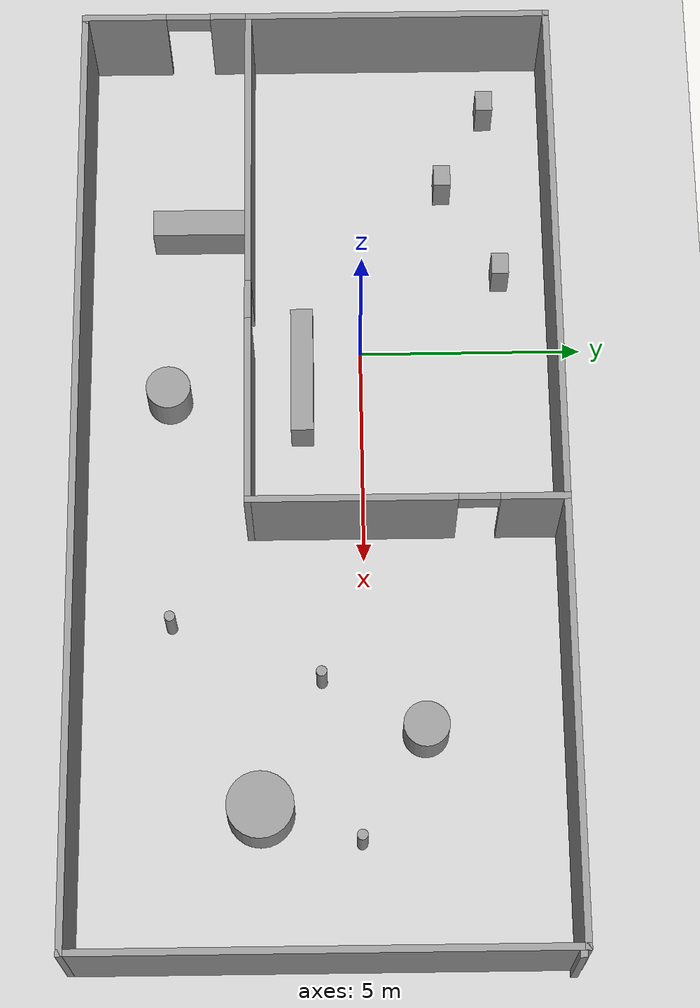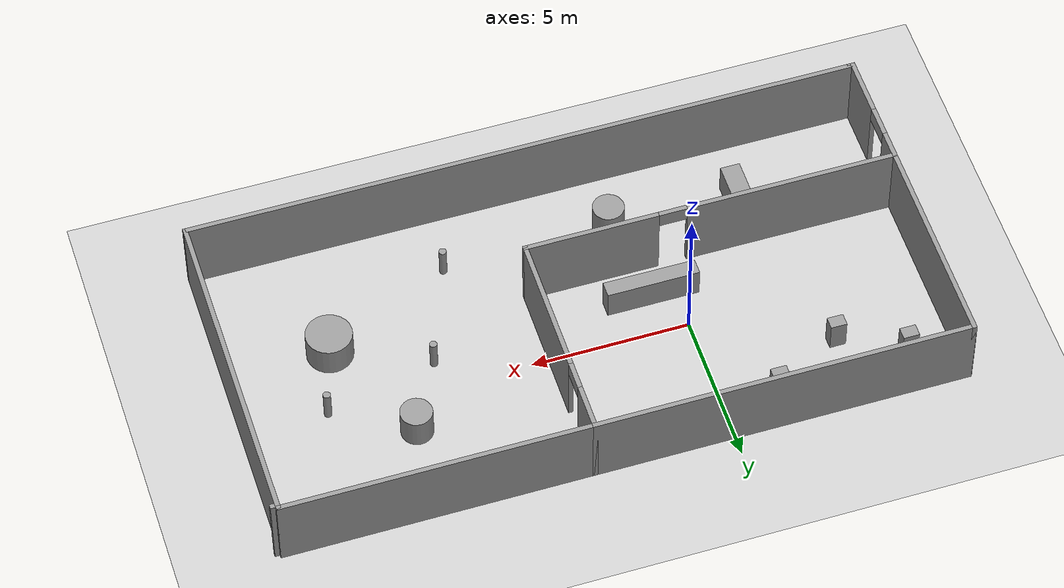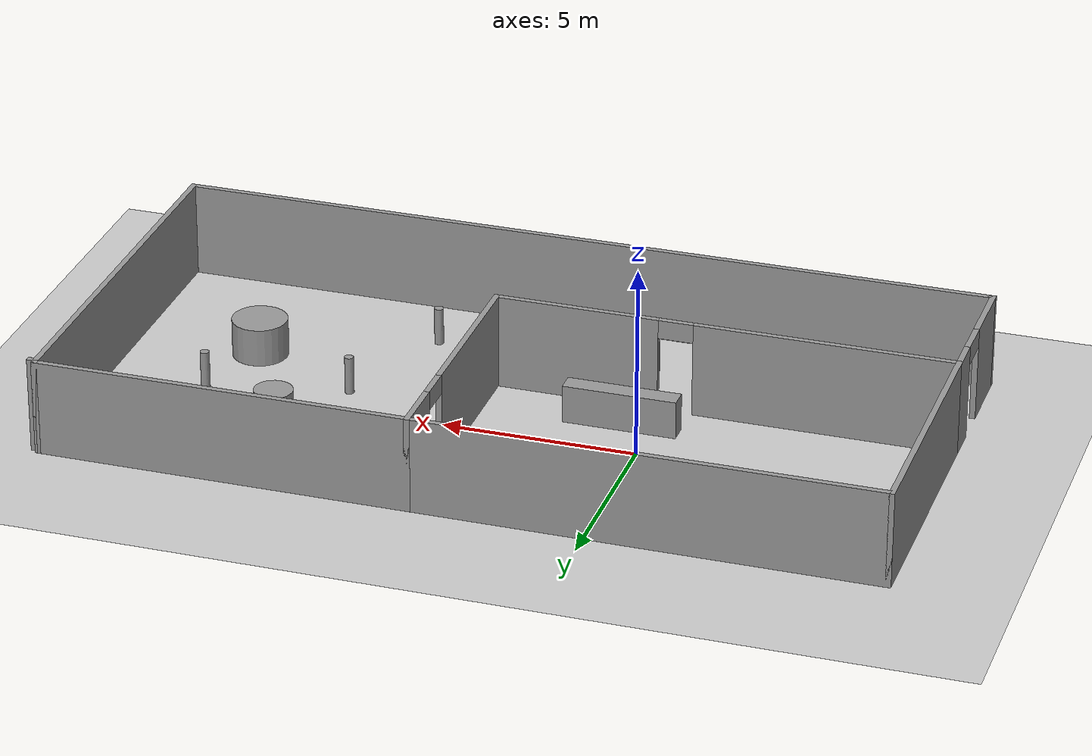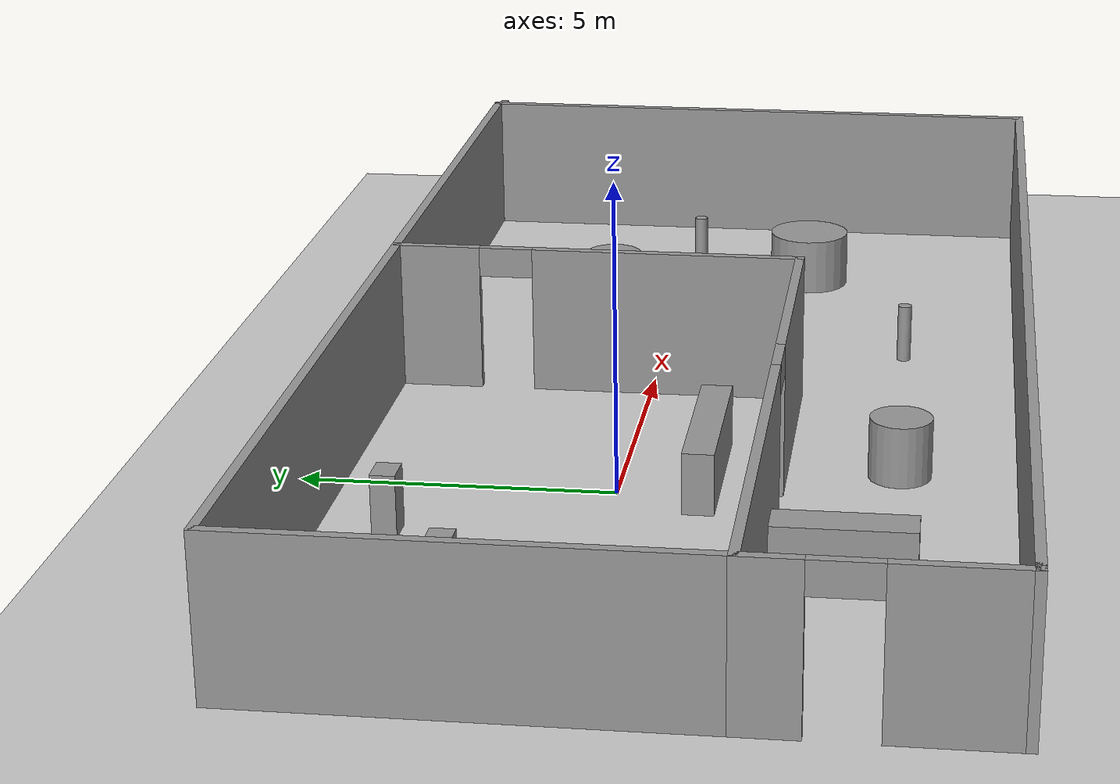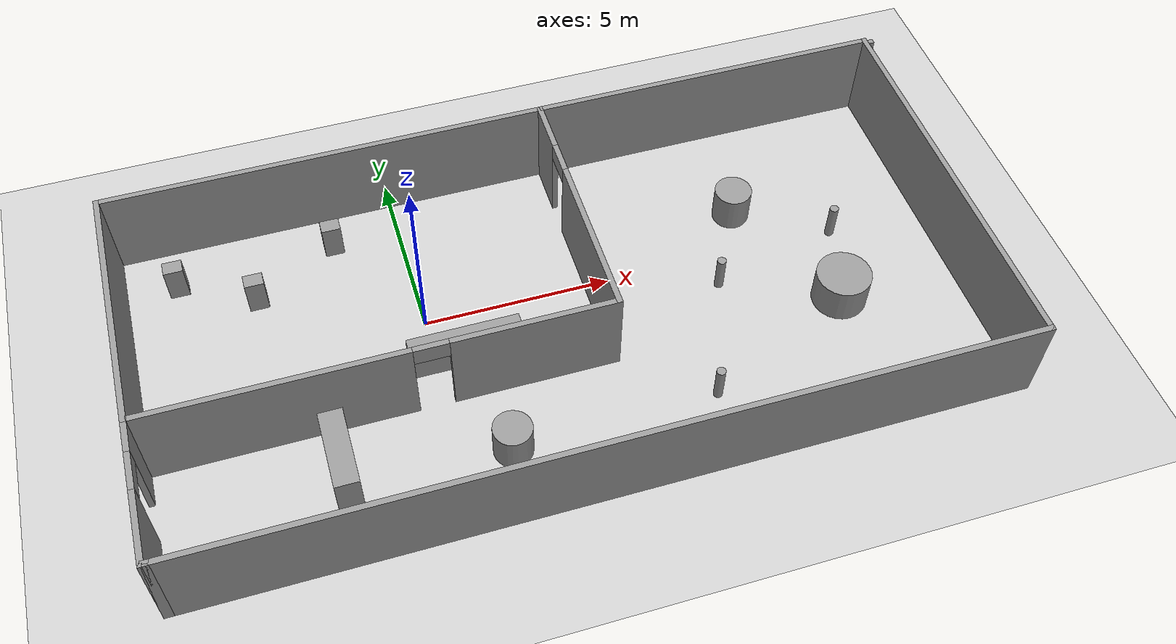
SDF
<sdf version="1.6">
 <world name="default">
  <light name="sun" type="directional">
   <pose>0 0 10 0 -0 0</pose>
   <diffuse>0.8 0.8 0.8 1</diffuse>
   <specular>0.2 0.2 0.2 1</specular>
   <attenuation>
    <range>1000</range>
    <constant>0.9</constant>
    <linear>0.01</linear>
    <quadratic>0.001</quadratic>
   </attenuation>
   <direction>-0.5 0.1 -0.9</direction>
  </light>
  <model name="ground_plane">
   <static>1</static>
   <link name="link">
    <collision name="collision">
     <geometry><plane><normal>0 0 1</normal><size>100 100</size></plane></geometry>
     <surface>
      <contact><collide_bitmask>65535</collide_bitmask></contact>
      <friction><ode><mu>100</mu><mu2>50</mu2></ode></friction>
     </surface>
    </collision>
    <visual name="visual">
     <cast_shadows>0</cast_shadows>
     <geometry><plane><normal>0 0 1</normal><size>100 100</size></plane></geometry>
     <material>
      <script><uri>file://media/materials/scripts/gazebo.material</uri><name>Gazebo/Grey</name></script>
     </material>
    </visual>
   </link>
  </model>
  <gravity>0 0 -9.8</gravity>
  <magnetic_field>6e-06 2.3e-05 -4.2e-05</magnetic_field>
  <atmosphere type="adiabatic"/>
  <physics name="default_physics" default="0" type="ode">
   <max_step_size>0.001</max_step_size>
   <real_time_factor>1</real_time_factor>
   <real_time_update_rate>1000</real_time_update_rate>
  </physics>
  <scene><ambient>0.4 0.4 0.4 1</ambient><background>0.7 0.7 0.7 1</background><shadows>1</shadows></scene>
  <spherical_coordinates>
   <surface_model>EARTH_WGS84</surface_model>
   <latitude_deg>0</latitude_deg>
   <longitude_deg>0</longitude_deg>
   <elevation>0</elevation>
   <heading_deg>0</heading_deg>
  </spherical_coordinates>
  <model name="homeServiceBuilding">
   <pose>3.35994 -0.947617 0 0 -0 0</pose>
   <link name="Wall_0">
    <collision name="Wall_0_Collision">
     <geometry><box><size>7 0.15 2.5</size></box></geometry>
     <pose>0 0 1.25 0 -0 0</pose>
    </collision>
    <visual name="Wall_0_Visual">
     <pose>0 0 1.25 0 -0 0</pose>
     <geometry><box><size>7 0.15 2.5</size></box></geometry>
     <material>
      <script><uri>file://media/materials/scripts/gazebo.material</uri><name>Gazebo/Grey</name></script>
      <ambient>1 1 1 1</ambient>
     </material>
     <meta><layer>0</layer></meta>
    </visual>
    <pose>-10.8 1.875 0 0 -0 1.5708</pose>
   </link>
   <link name="Wall_1">
    <collision name="Wall_1_Collision">
     <geometry><box><size>12 0.15 2.5</size></box></geometry>
     <pose>0 0 1.25 0 -0 0</pose>
    </collision>
    <visual name="Wall_1_Visual">
     <pose>0 0 1.25 0 -0 0</pose>
     <geometry><box><size>12 0.15 2.5</size></box></geometry>
     <material>
      <script><uri>file://media/materials/scripts/gazebo.material</uri><name>Gazebo/Grey</name></script>
      <ambient>1 1 1 1</ambient>
     </material>
     <meta><layer>0</layer></meta>
    </visual>
    <pose>-4.875 5.3 0 0 -0 0</pose>
   </link>
   <link name="Wall_10">
    <collision name="Wall_10_Collision">
     <geometry><box><size>9.75 0.15 2.5</size></box></geometry>
     <pose>0 0 1.25 0 -0 0</pose>
    </collision>
    <visual name="Wall_10_Visual">
     <pose>0 0 1.25 0 -0 0</pose>
     <geometry><box><size>9.75 0.15 2.5</size></box></geometry>
     <material>
      <script><uri>file://media/materials/scripts/gazebo.material</uri><name>Gazebo/Grey</name></script>
      <ambient>1 1 1 1</ambient>
     </material>
     <meta><layer>0</layer></meta>
    </visual>
    <pose>5.85 5.3 0 0 -0 0</pose>
   </link>
   <link name="Wall_11">
    <collision name="Wall_11_Collision">
     <geometry><box><size>0.15 0.15 2.5</size></box></geometry>
     <pose>0 0 1.25 0 -0 0</pose>
    </collision>
    <visual name="Wall_11_Visual">
     <pose>0 0 1.25 0 -0 0</pose>
     <geometry><box><size>0.15 0.15 2.5</size></box></geometry>
     <material>
      <script><uri>file://media/materials/scripts/gazebo.material</uri><name>Gazebo/Grey</name></script>
      <ambient>1 1 1 1</ambient>
     </material>
     <meta><layer>0</layer></meta>
    </visual>
    <pose>10.65 5.3 0 0 -0 0</pose>
   </link>
   <link name="Wall_14">
    <collision name="Wall_14_Collision">
     <geometry><box><size>10.75 0.15 2.5</size></box></geometry>
     <pose>0 0 1.25 0 -0 0</pose>
    </collision>
    <visual name="Wall_14_Visual">
     <pose>0 0 1.25 0 -0 0</pose>
     <geometry><box><size>10.75 0.15 2.5</size></box></geometry>
     <material>
      <script><uri>file://media/materials/scripts/gazebo.material</uri><name>Gazebo/Grey</name></script>
      <ambient>1 1 1 1</ambient>
     </material>
     <meta><layer>0</layer></meta>
    </visual>
    <pose>10.65 0 0 0 0 -1.5708</pose>
   </link>
   <link name="Wall_15">
    <collision name="Wall_15_Collision">
     <geometry><box><size>21.5 0.15 2.5</size></box></geometry>
     <pose>0 0 1.25 0 -0 0</pose>
    </collision>
    <visual name="Wall_15_Visual">
     <pose>0 0 1.25 0 -0 0</pose>
     <geometry><box><size>21.5 0.15 2.5</size></box></geometry>
     <material>
      <script><uri>file://media/materials/scripts/gazebo.material</uri><name>Gazebo/Grey</name></script>
      <ambient>1 1 1 1</ambient>
     </material>
     <meta><layer>0</layer></meta>
    </visual>
    <pose>-0.025 -5.3 0 0 -0 3.14159</pose>
   </link>
   <link name="Wall_16">
    <collision name="Wall_16_Collision">
     <geometry><box><size>0.15 0.15 2.5</size></box></geometry>
     <pose>0 0 1.25 0 -0 0</pose>
    </collision>
    <visual name="Wall_16_Visual">
     <pose>0 0 1.25 0 -0 0</pose>
     <geometry><box><size>0.15 0.15 2.5</size></box></geometry>
     <material>
      <script><uri>file://media/materials/scripts/gazebo.material</uri><name>Gazebo/Grey</name></script>
      <ambient>1 1 1 1</ambient>
     </material>
     <meta><layer>0</layer></meta>
    </visual>
    <pose>-10.7 -5.3 0 0 -0 0</pose>
   </link>
   <link name="Wall_17">
    <collision name="Wall_17_Collision">
     <geometry><box><size>0.25 0.15 2.5</size></box></geometry>
     <pose>0 0 1.25 0 -0 0</pose>
    </collision>
    <visual name="Wall_17_Visual">
     <pose>0 0 1.25 0 -0 0</pose>
     <geometry><box><size>0.25 0.15 2.5</size></box></geometry>
     <material>
      <script><uri>file://media/materials/scripts/gazebo.material</uri><name>Gazebo/Grey</name></script>
      <ambient>1 1 1 1</ambient>
     </material>
     <meta><layer>0</layer></meta>
    </visual>
    <pose>-10.75 -5.3 0 0 -0 3.14159</pose>
   </link>
   <link name="Wall_18">
    <pose>-10.8 -3.425 0 0 -0 1.5708</pose>
    <visual name="Wall_18_Visual_0">
     <pose>-0.980045 0 1.25 0 -0 0</pose>
     <geometry><box><size>1.93991 0.15 2.5</size></box></geometry>
     <material>
      <script><uri>file://media/materials/scripts/gazebo.material</uri><name>Gazebo/Grey</name></script>
      <ambient>1 1 1 1</ambient>
     </material>
     <meta><layer>0</layer></meta>
    </visual>
    <collision name="Wall_18_Collision_0">
     <geometry><box><size>1.93991 0.15 2.5</size></box></geometry>
     <pose>-0.980045 0 1.25 0 -0 0</pose>
    </collision>
    <visual name="Wall_18_Visual_1">
     <pose>1.47186 0 1.25 0 -0 0</pose>
     <geometry><box><size>0.956273 0.15 2.5</size></box></geometry>
     <material>
      <script><uri>file://media/materials/scripts/gazebo.material</uri><name>Gazebo/Grey</name></script>
      <ambient>1 1 1 1</ambient>
     </material>
     <meta><layer>0</layer></meta>
    </visual>
    <collision name="Wall_18_Collision_1">
     <geometry><box><size>0.956273 0.15 2.5</size></box></geometry>
     <pose>1.47186 0 1.25 0 -0 0</pose>
    </collision>
    <visual name="Wall_18_Visual_2">
     <pose>0.491819 0 2.25 0 -0 0</pose>
     <geometry><box><size>1.00382 0.15 0.5</size></box></geometry>
     <material>
      <script><uri>file://media/materials/scripts/gazebo.material</uri><name>Gazebo/Grey</name></script>
      <ambient>1 1 1 1</ambient>
     </material>
     <meta><layer>0</layer></meta>
    </visual>
    <collision name="Wall_18_Collision_2">
     <geometry><box><size>1.00382 0.15 0.5</size></box></geometry>
     <pose>0.491819 0 2.25 0 -0 0</pose>
    </collision>
   </link>
   <link name="Wall_2">
    <pose>1.05 1.875 0 0 0 -1.5708</pose>
    <visual name="Wall_2_Visual_0">
     <pose>-2.74745 0 1.25 0 -0 0</pose>
     <geometry><box><size>1.5051 0.15 2.5</size></box></geometry>
     <material>
      <script><uri>file://media/materials/scripts/gazebo.material</uri><name>Gazebo/Grey</name></script>
      <ambient>1 1 1 1</ambient>
     </material>
     <meta><layer>0</layer></meta>
    </visual>
    <collision name="Wall_2_Collision_0">
     <geometry><box><size>1.5051 0.15 2.5</size></box></geometry>
     <pose>-2.74745 0 1.25 0 -0 0</pose>
    </collision>
    <visual name="Wall_2_Visual_1">
     <pose>1.20255 0 1.25 0 -0 0</pose>
     <geometry><box><size>4.5949 0.15 2.5</size></box></geometry>
     <material>
      <script><uri>file://media/materials/scripts/gazebo.material</uri><name>Gazebo/Grey</name></script>
      <ambient>1 1 1 1</ambient>
     </material>
     <meta><layer>0</layer></meta>
    </visual>
    <collision name="Wall_2_Collision_1">
     <geometry><box><size>4.5949 0.15 2.5</size></box></geometry>
     <pose>1.20255 0 1.25 0 -0 0</pose>
    </collision>
    <visual name="Wall_2_Visual_2">
     <pose>-1.5449 0 2.25 0 -0 0</pose>
     <geometry><box><size>0.9 0.15 0.5</size></box></geometry>
     <material>
      <script><uri>file://media/materials/scripts/gazebo.material</uri><name>Gazebo/Grey</name></script>
      <ambient>1 1 1 1</ambient>
     </material>
     <meta><layer>0</layer></meta>
    </visual>
    <collision name="Wall_2_Collision_2">
     <geometry><box><size>0.9 0.15 0.5</size></box></geometry>
     <pose>-1.5449 0 2.25 0 -0 0</pose>
    </collision>
   </link>
   <link name="Wall_3">
    <pose>-4.875 -1.55 0 0 -0 3.14159</pose>
    <visual name="Wall_3_Visual_0">
     <pose>-3.84356 0 1.25 0 -0 0</pose>
     <geometry><box><size>4.31288 0.15 2.5</size></box></geometry>
     <material>
      <script><uri>file://media/materials/scripts/gazebo.material</uri><name>Gazebo/Grey</name></script>
      <ambient>1 1 1 1</ambient>
     </material>
     <meta><layer>0</layer></meta>
    </visual>
    <collision name="Wall_3_Collision_0">
     <geometry><box><size>4.31288 0.15 2.5</size></box></geometry>
     <pose>-3.84356 0 1.25 0 -0 0</pose>
    </collision>
    <visual name="Wall_3_Visual_1">
     <pose>2.60644 0 1.25 0 -0 0</pose>
     <geometry><box><size>6.78712 0.15 2.5</size></box></geometry>
     <material>
      <script><uri>file://media/materials/scripts/gazebo.material</uri><name>Gazebo/Grey</name></script>
      <ambient>1 1 1 1</ambient>
     </material>
     <meta><layer>0</layer></meta>
    </visual>
    <collision name="Wall_3_Collision_1">
     <geometry><box><size>6.78712 0.15 2.5</size></box></geometry>
     <pose>2.60644 0 1.25 0 -0 0</pose>
    </collision>
    <visual name="Wall_3_Visual_2">
     <pose>-1.23712 0 2.25 0 -0 0</pose>
     <geometry><box><size>0.9 0.15 0.5</size></box></geometry>
     <material>
      <script><uri>file://media/materials/scripts/gazebo.material</uri><name>Gazebo/Grey</name></script>
      <ambient>1 1 1 1</ambient>
     </material>
     <meta><layer>0</layer></meta>
    </visual>
    <collision name="Wall_3_Collision_2">
     <geometry><box><size>0.9 0.15 0.5</size></box></geometry>
     <pose>-1.23712 0 2.25 0 -0 0</pose>
    </collision>
   </link>
   <link name="Wall_8">
    <collision name="Wall_8_Collision">
     <geometry><box><size>0.15 0.15 2.5</size></box></geometry>
     <pose>0 0 1.25 0 -0 0</pose>
    </collision>
    <visual name="Wall_8_Visual">
     <pose>0 0 1.25 0 -0 0</pose>
     <geometry><box><size>0.15 0.15 2.5</size></box></geometry>
     <material>
      <script><uri>file://media/materials/scripts/gazebo.material</uri><name>Gazebo/Grey</name></script>
      <ambient>1 1 1 1</ambient>
     </material>
     <meta><layer>0</layer></meta>
    </visual>
    <pose>10.8 5.2 0 0 -0 0</pose>
   </link>
   <static>1</static>
  </model>
  <model name="unit_box">
   <pose>-6.00664 2.9604 0.499998 -4e-06 4e-06 -4.5e-05</pose>
   <link name="link">
    <inertial>
     <mass>1</mass>
     <inertia>
      <ixx>0.166667</ixx>
      <ixy>0</ixy>
      <ixz>0</ixz>
      <iyy>0.166667</iyy>
      <iyz>0</iyz>
      <izz>0.166667</izz>
     </inertia>
    </inertial>
    <collision name="collision"><geometry><box><size>0.508601 0.385684 1</size></box></geometry></collision>
    <visual name="visual">
     <geometry><box><size>0.508601 0.385684 1</size></box></geometry>
     <material>
      <script><name>Gazebo/Grey</name><uri>file://media/materials/scripts/gazebo.material</uri></script>
     </material>
    </visual>
   </link>
  </model>
  <model name="unit_box_clone">
   <pose>-4.05446 1.92938 0.5 0 -0 1.6e-05</pose>
   <link name="link">
    <inertial>
     <mass>1</mass>
     <inertia>
      <ixx>0.166667</ixx>
      <ixy>0</ixy>
      <ixz>0</ixz>
      <iyy>0.166667</iyy>
      <iyz>0</iyz>
      <izz>0.166667</izz>
     </inertia>
    </inertial>
    <collision name="collision"><geometry><box><size>0.508601 0.385684 1</size></box></geometry></collision>
    <visual name="visual">
     <geometry><box><size>0.508601 0.385684 1</size></box></geometry>
     <material>
      <script><name>Gazebo/Grey</name><uri>file://media/materials/scripts/gazebo.material</uri></script>
     </material>
    </visual>
   </link>
  </model>
  <model name="unit_box_clone_0">
   <pose>-1.79676 3.2021 0.499998 -4e-06 4e-06 -0.000103</pose>
   <link name="link">
    <inertial>
     <mass>1</mass>
     <inertia>
      <ixx>0.166667</ixx>
      <ixy>0</ixy>
      <ixz>0</ixz>
      <iyy>0.166667</iyy>
      <iyz>0</iyz>
      <izz>0.166667</izz>
     </inertia>
    </inertial>
    <collision name="collision"><geometry><box><size>0.508601 0.385684 1</size></box></geometry></collision>
    <visual name="visual">
     <geometry><box><size>0.508601 0.385684 1</size></box></geometry>
     <material>
      <script><name>Gazebo/Grey</name><uri>file://media/materials/scripts/gazebo.material</uri></script>
     </material>
    </visual>
   </link>
  </model>
  <model name="unit_cylinder">
   <pose>8.99354 1.27893 0.499992 -3e-06 2e-06 0</pose>
   <link name="link">
    <inertial>
     <mass>1</mass>
     <inertia><ixx>0.145833</ixx><ixy>0</ixy><ixz>0</ixz><iyy>0.145833</iyy><iyz>0</iyz><izz>0.125</izz></inertia>
    </inertial>
    <collision name="collision">
     <geometry><cylinder><radius>0.5</radius><length>1</length></cylinder></geometry>
    </collision>
    <visual name="visual">
     <geometry><cylinder><radius>0.5</radius><length>1</length></cylinder></geometry>
     <material>
      <script><name>Gazebo/Grey</name><uri>file://media/materials/scripts/gazebo.material</uri></script>
     </material>
    </visual>
   </link>
  </model>
  <model name="unit_cylinder_clone">
   <pose>7.80453 -0.953514 0.499993 0 0 -4e-06</pose>
   <link name="link">
    <inertial>
     <mass>1</mass>
     <inertia><ixx>0.145833</ixx><ixy>0</ixy><ixz>0</ixz><iyy>0.145833</iyy><iyz>0</iyz><izz>0.125</izz></inertia>
    </inertial>
    <collision name="collision">
     <geometry><cylinder><radius>0.117859</radius><length>1</length></cylinder></geometry>
    </collision>
    <visual name="visual">
     <geometry><cylinder><radius>0.117859</radius><length>1</length></cylinder></geometry>
     <material>
      <script><name>Gazebo/Grey</name><uri>file://media/materials/scripts/gazebo.material</uri></script>
     </material>
    </visual>
   </link>
  </model>
  <model name="unit_cylinder_clone_0">
   <pose>10.6954 -2.27675 0.499995 -5e-06 4e-06 0</pose>
   <link name="link">
    <inertial>
     <mass>1</mass>
     <inertia><ixx>0.145833</ixx><ixy>0</ixy><ixz>0</ixz><iyy>0.145833</iyy><iyz>0</iyz><izz>0.125</izz></inertia>
    </inertial>
    <collision name="collision">
     <geometry><cylinder><radius>0.725965</radius><length>1</length></cylinder></geometry>
    </collision>
    <visual name="visual">
     <geometry><cylinder><radius>0.725965</radius><length>1</length></cylinder></geometry>
     <material>
      <script><name>Gazebo/Grey</name><uri>file://media/materials/scripts/gazebo.material</uri></script>
     </material>
    </visual>
   </link>
  </model>
  <model name="unit_box_0">
   <pose>-2.91123 -3.65994 0.499977 -2.1e-05 0 -1e-06</pose>
   <link name="link">
    <inertial>
     <mass>1</mass>
     <inertia>
      <ixx>0.166667</ixx>
      <ixy>0</ixy>
      <ixz>0</ixz>
      <iyy>0.166667</iyy>
      <iyz>0</iyz>
      <izz>0.166667</izz>
     </inertia>
    </inertial>
    <collision name="collision"><geometry><box><size>0.626921 2.12904 1</size></box></geometry></collision>
    <visual name="visual">
     <geometry><box><size>0.626921 2.12904 1</size></box></geometry>
     <material>
      <script><name>Gazebo/Grey</name><uri>file://media/materials/scripts/gazebo.material</uri></script>
     </material>
    </visual>
   </link>
  </model>
  <model name="unit_box_1">
   <pose>0.769719 -1.33637 0.499843 0 0.000107 0.000203</pose>
   <link name="link">
    <inertial>
     <mass>1</mass>
     <inertia>
      <ixx>0.166667</ixx>
      <ixy>0</ixy>
      <ixz>0</ixz>
      <iyy>0.166667</iyy>
      <iyz>0</iyz>
      <izz>0.166667</izz>
     </inertia>
    </inertial>
    <collision name="collision"><geometry><box><size>2.9389 0.502549 1</size></box></geometry></collision>
    <visual name="visual">
     <geometry><box><size>2.9389 0.502549 1</size></box></geometry>
     <material>
      <script><name>Gazebo/Grey</name><uri>file://media/materials/scripts/gazebo.material</uri></script>
     </material>
    </visual>
   </link>
  </model>
  <model name="unit_cylinder_clone_1">
   <pose>1.17345 -4.33356 0.499998 3e-06 -4e-06 0</pose>
   <link name="link">
    <inertial>
     <mass>1</mass>
     <inertia><ixx>0.145833</ixx><ixy>0</ixy><ixz>0</ixz><iyy>0.145833</iyy><iyz>0</iyz><izz>0.125</izz></inertia>
    </inertial>
    <collision name="collision">
     <geometry><cylinder><radius>0.5</radius><length>1</length></cylinder></geometry>
    </collision>
    <visual name="visual">
     <geometry><cylinder><radius>0.5</radius><length>1</length></cylinder></geometry>
     <material>
      <script><name>Gazebo/Grey</name><uri>file://media/materials/scripts/gazebo.material</uri></script>
     </material>
    </visual>
   </link>
  </model>
  <model name="unit_cylinder_clone_clone">
   <pose>6.53237 -4.23183 0.5 0 0 -6e-06</pose>
   <link name="link">
    <inertial>
     <mass>1</mass>
     <inertia><ixx>0.145833</ixx><ixy>0</ixy><ixz>0</ixz><iyy>0.145833</iyy><iyz>0</iyz><izz>0.125</izz></inertia>
    </inertial>
    <collision name="collision">
     <geometry><cylinder><radius>0.117858</radius><length>1</length></cylinder></geometry>
    </collision>
    <visual name="visual">
     <geometry><cylinder><radius>0.117858</radius><length>1</length></cylinder></geometry>
     <material>
      <script><name>Gazebo/Grey</name><uri>file://media/materials/scripts/gazebo.material</uri></script>
     </material>
    </visual>
   </link>
  </model>
  <model name="unit_cylinder_clone_clone_0">
   <pose>11.3659 -0.123722 0.5 0 0 -6e-06</pose>
   <link name="link">
    <inertial>
     <mass>1</mass>
     <inertia><ixx>0.145833</ixx><ixy>0</ixy><ixz>0</ixz><iyy>0.145833</iyy><iyz>0</iyz><izz>0.125</izz></inertia>
    </inertial>
    <collision name="collision">
     <geometry><cylinder><radius>0.117858</radius><length>1</length></cylinder></geometry>
    </collision>
    <visual name="visual">
     <geometry><cylinder><radius>0.117858</radius><length>1</length></cylinder></geometry>
     <material>
      <script><name>Gazebo/Grey</name><uri>file://media/materials/scripts/gazebo.material</uri></script>
     </material>
    </visual>
   </link>
  </model>
 </world>
</sdf>
